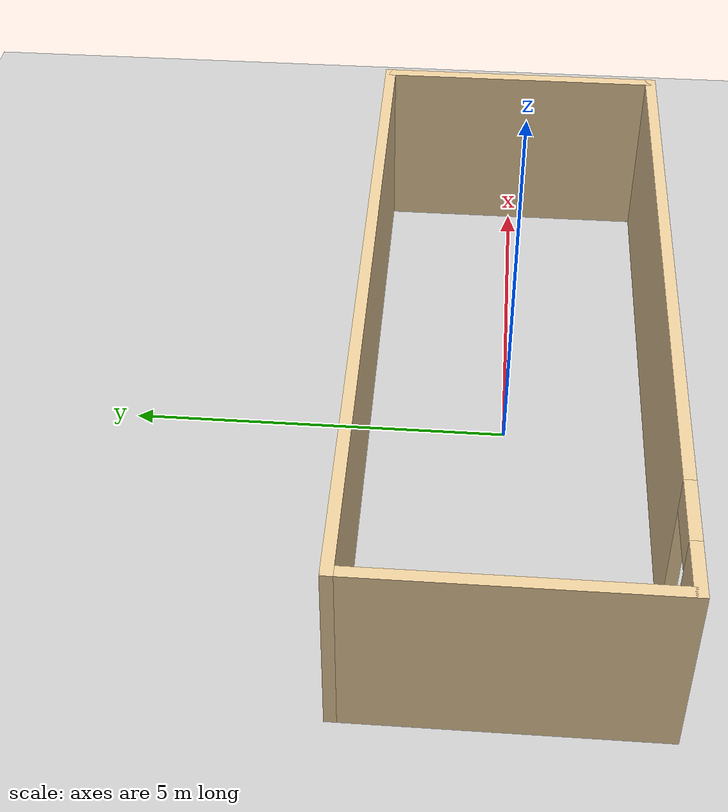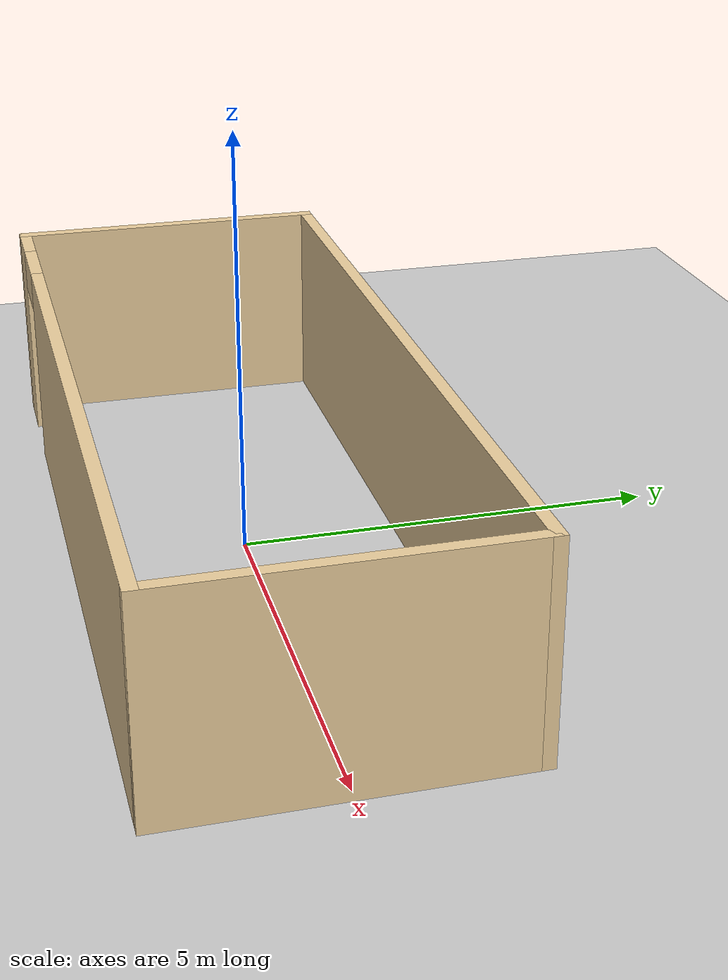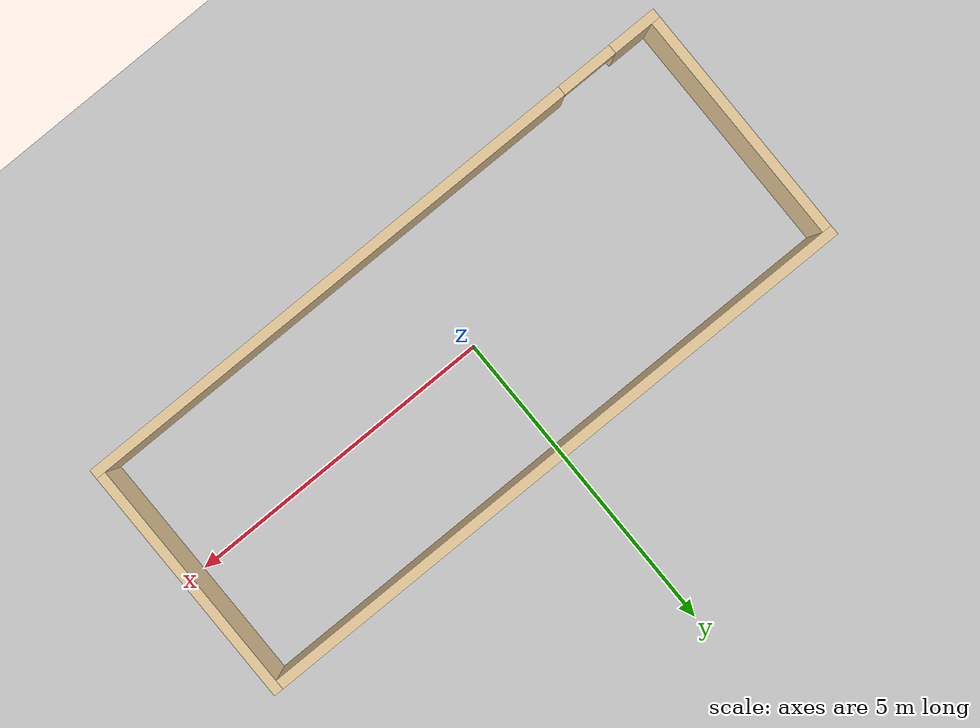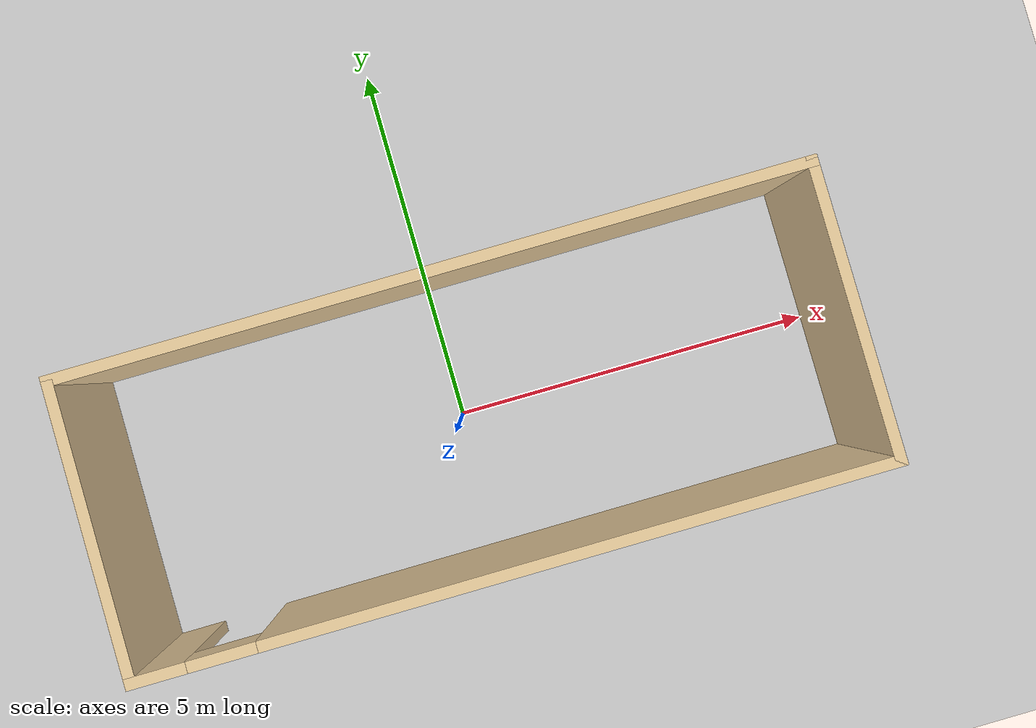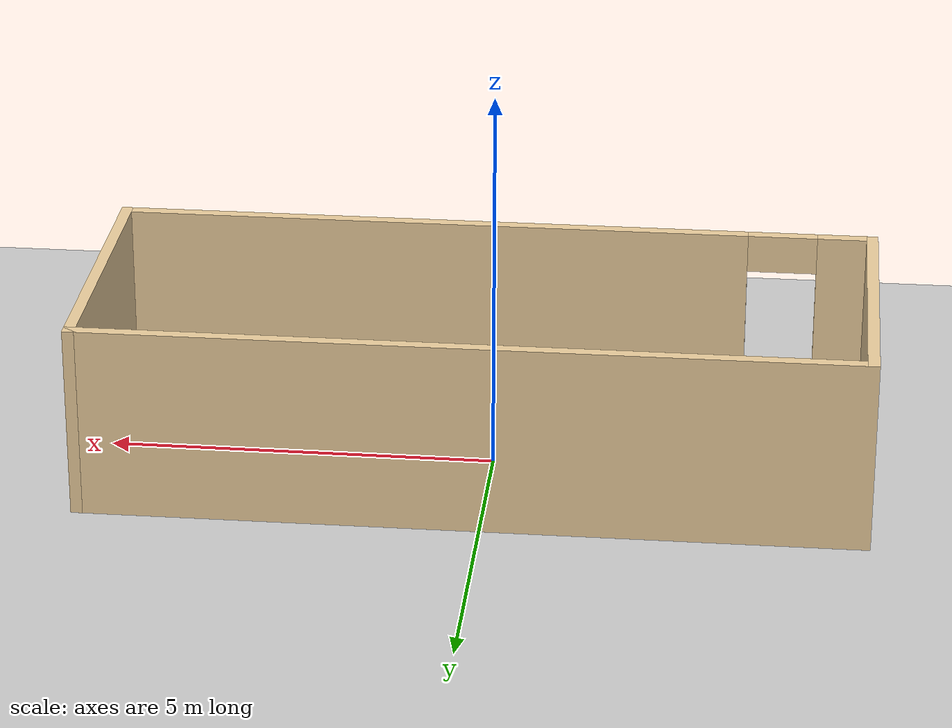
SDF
<sdf version="1.6">
 <world name="default">
  <light name="sun" type="directional">
   <pose>0 0 10 0 -0 0</pose>
   <diffuse>0.8 0.8 0.8 1</diffuse>
   <specular>0.2 0.2 0.2 1</specular>
   <attenuation>
    <range>1000</range>
    <constant>0.9</constant>
    <linear>0.01</linear>
    <quadratic>0.001</quadratic>
   </attenuation>
   <direction>-0.5 0.1 -0.9</direction>
  </light>
  <model name="ground_plane">
   <static>1</static>
   <link name="link">
    <collision name="collision">
     <geometry><plane><normal>0 0 1</normal><size>100 100</size></plane></geometry>
     <surface>
      <contact><collide_bitmask>65535</collide_bitmask></contact>
      <friction><ode><mu>100</mu><mu2>50</mu2></ode></friction>
     </surface>
    </collision>
    <visual name="visual">
     <cast_shadows>0</cast_shadows>
     <geometry><plane><normal>0 0 1</normal><size>100 100</size></plane></geometry>
     <material>
      <script><uri>file://media/materials/scripts/gazebo.material</uri><name>Gazebo/Grey</name></script>
     </material>
    </visual>
   </link>
  </model>
  <gravity>0 0 -9.8</gravity>
  <magnetic_field>6e-06 2.3e-05 -4.2e-05</magnetic_field>
  <atmosphere type="adiabatic"/>
  <physics name="default_physics" default="0" type="ode">
   <max_step_size>0.001</max_step_size>
   <real_time_factor>1</real_time_factor>
   <real_time_update_rate>1000</real_time_update_rate>
  </physics>
  <scene><ambient>0.4 0.4 0.4 1</ambient><background>0.7 0.7 0.7 1</background><shadows>1</shadows></scene>
  <audio><device>default</device></audio>
  <spherical_coordinates>
   <surface_model>EARTH_WGS84</surface_model>
   <latitude_deg>0</latitude_deg>
   <longitude_deg>0</longitude_deg>
   <elevation>0</elevation>
   <heading_deg>0</heading_deg>
  </spherical_coordinates>
  <model name="Markokbro">
   <pose>0.158793 -0.035707 0 0 -0 0</pose>
   <link name="Wall_1">
    <pose>0 -1.925 0 0 -0 0</pose>
    <visual name="Wall_1_Visual_0">
     <pose>-4.6066 0 1.25 0 -0 0</pose>
     <geometry><box><size>0.786791 0.15 2.5</size></box></geometry>
     <material>
      <script><uri>file://media/materials/scripts/gazebo.material</uri><name>Gazebo/Grey</name></script>
      <ambient>0.921569 0.807843 0.615686 1</ambient>
     </material>
     <meta><layer>0</layer></meta>
    </visual>
    <collision name="Wall_1_Collision_0">
     <geometry><box><size>0.786791 0.15 2.5</size></box></geometry>
     <pose>-4.6066 0 1.25 0 -0 0</pose>
    </collision>
    <visual name="Wall_1_Visual_1">
     <pose>0.843396 0 1.25 0 -0 0</pose>
     <geometry><box><size>8.31321 0.15 2.5</size></box></geometry>
     <material>
      <script><uri>file://media/materials/scripts/gazebo.material</uri><name>Gazebo/Grey</name></script>
      <ambient>0.921569 0.807843 0.615686 1</ambient>
     </material>
     <meta><layer>0</layer></meta>
    </visual>
    <collision name="Wall_1_Collision_1">
     <geometry><box><size>8.31321 0.15 2.5</size></box></geometry>
     <pose>0.843396 0 1.25 0 -0 0</pose>
    </collision>
    <visual name="Wall_1_Visual_2">
     <pose>-3.76321 0 2.25 0 -0 0</pose>
     <geometry><box><size>0.9 0.15 0.5</size></box></geometry>
     <material>
      <script><uri>file://media/materials/scripts/gazebo.material</uri><name>Gazebo/Grey</name></script>
      <ambient>0.921569 0.807843 0.615686 1</ambient>
     </material>
     <meta><layer>0</layer></meta>
    </visual>
    <collision name="Wall_1_Collision_2">
     <geometry><box><size>0.9 0.15 0.5</size></box></geometry>
     <pose>-3.76321 0 2.25 0 -0 0</pose>
    </collision>
   </link>
   <link name="Wall_3">
    <collision name="Wall_3_Collision">
     <geometry><box><size>4 0.15 2.5</size></box></geometry>
     <pose>0 0 1.25 0 -0 0</pose>
    </collision>
    <visual name="Wall_3_Visual">
     <pose>0 0 1.25 0 -0 0</pose>
     <geometry><box><size>4 0.15 2.5</size></box></geometry>
     <material>
      <script><uri>file://media/materials/scripts/gazebo.material</uri><name>Gazebo/Grey</name></script>
      <ambient>0.921569 0.807843 0.615686 1</ambient>
     </material>
     <meta><layer>0</layer></meta>
    </visual>
    <pose>4.925 0 0 0 -0 1.5708</pose>
   </link>
   <link name="Wall_4">
    <collision name="Wall_4_Collision">
     <geometry><box><size>10 0.15 2.5</size></box></geometry>
     <pose>0 0 1.25 0 -0 0</pose>
    </collision>
    <visual name="Wall_4_Visual">
     <pose>0 0 1.25 0 -0 0</pose>
     <geometry><box><size>10 0.15 2.5</size></box></geometry>
     <material>
      <script><uri>file://media/materials/scripts/gazebo.material</uri><name>Gazebo/Grey</name></script>
      <ambient>0.921569 0.807843 0.615686 1</ambient>
     </material>
     <meta><layer>0</layer></meta>
    </visual>
    <pose>0 1.925 0 0 -0 3.14159</pose>
   </link>
   <link name="Wall_5">
    <collision name="Wall_5_Collision">
     <geometry><box><size>4 0.15 2.5</size></box></geometry>
     <pose>0 0 1.25 0 -0 0</pose>
    </collision>
    <visual name="Wall_5_Visual">
     <pose>0 0 1.25 0 -0 0</pose>
     <geometry><box><size>4 0.15 2.5</size></box></geometry>
     <material>
      <script><uri>file://media/materials/scripts/gazebo.material</uri><name>Gazebo/Grey</name></script>
      <ambient>0.921569 0.807843 0.615686 1</ambient>
     </material>
     <meta><layer>0</layer></meta>
    </visual>
    <pose>-4.925 0 0 0 -0 -1.5708</pose>
   </link>
   <static>1</static>
  </model>
 </world>
</sdf>
